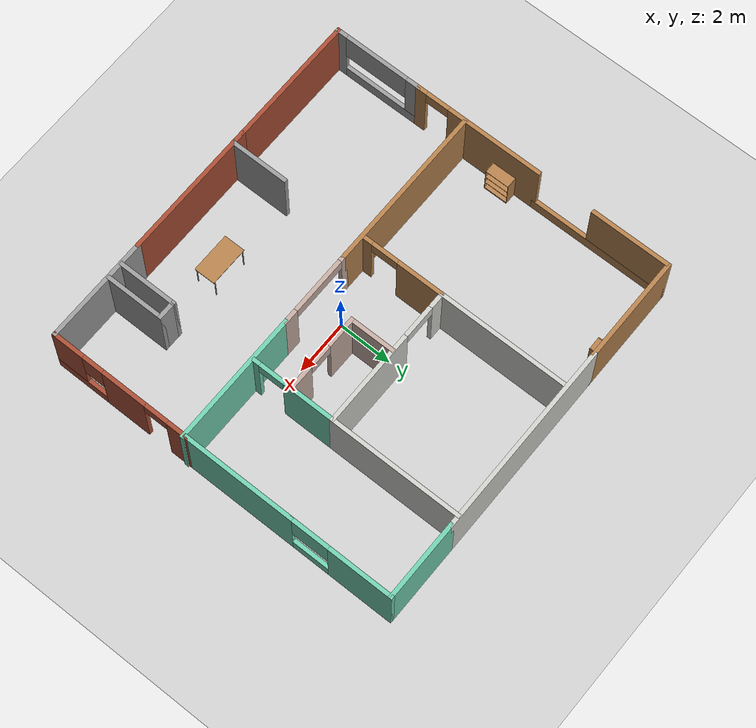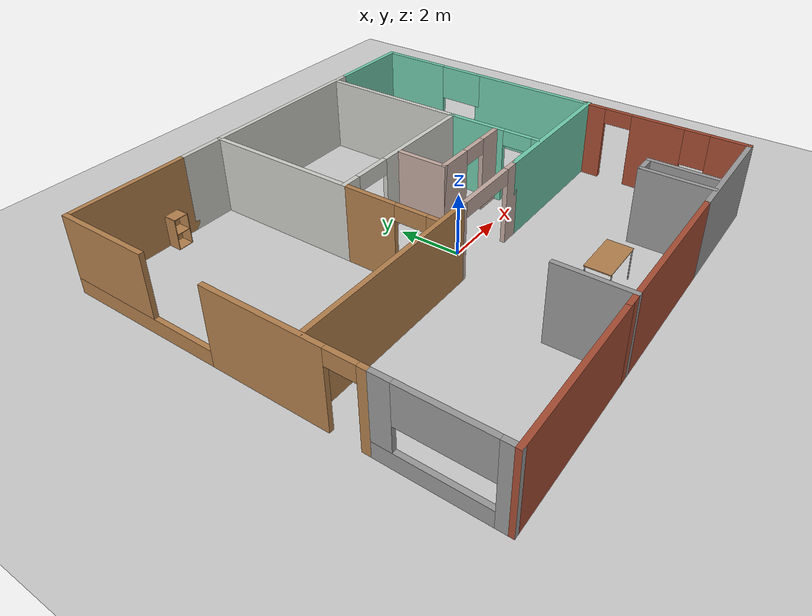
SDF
<sdf version="1.6">
 <world name="default">
  <model name="ground_plane">
   <static>1</static>
   <link name="link">
    <collision name="collision">
     <geometry><plane><normal>0 0 1</normal><size>100 100</size></plane></geometry>
     <surface>
      <contact><collide_bitmask>65535</collide_bitmask></contact>
      <friction><ode><mu>100</mu><mu2>50</mu2></ode></friction>
     </surface>
    </collision>
    <visual name="visual">
     <cast_shadows>0</cast_shadows>
     <geometry><plane><normal>0 0 1</normal><size>100 100</size></plane></geometry>
     <material>
      <script><uri>file://media/materials/scripts/gazebo.material</uri><name>Gazebo/Grey</name></script>
     </material>
    </visual>
   </link>
  </model>
  <model name="apartment2">
   <pose>-0.311146 0.646432 0 0 -0 0</pose>
   <link name="Wall_10">
    <pose>-6.92355 4.1 0 0 -0 1.5708</pose>
    <visual name="Wall_10_Visual_0">
     <pose>0 0 0.25 0 -0 0</pose>
     <geometry><box><size>5.25 0.15 0.5</size></box></geometry>
     <material>
      <script><uri>file://media/materials/scripts/gazebo.material</uri><name>Gazebo/Wood</name></script>
      <ambient>1 1 1 1</ambient>
     </material>
     <meta><layer>0</layer></meta>
    </visual>
    <collision name="Wall_10_Collision_0">
     <geometry><box><size>5.25 0.15 0.5</size></box></geometry>
     <pose>0 0 0.25 0 -0 0</pose>
    </collision>
    <visual name="Wall_10_Visual_1">
     <pose>1.10087 0 1.5 0 -0 0</pose>
     <geometry><box><size>3.04826 0.15 2</size></box></geometry>
     <material>
      <script><uri>file://media/materials/scripts/gazebo.material</uri><name>Gazebo/Wood</name></script>
      <ambient>1 1 1 1</ambient>
     </material>
     <meta><layer>0</layer></meta>
    </visual>
    <collision name="Wall_10_Collision_1">
     <geometry><box><size>3.04826 0.15 2</size></box></geometry>
     <pose>1.10087 0 1.5 0 -0 0</pose>
    </collision>
   </link>
   <link name="Wall_11">
    <collision name="Wall_11_Collision">
     <geometry><box><size>4 0.15 2.5</size></box></geometry>
     <pose>0 0 1.25 0 -0 0</pose>
    </collision>
    <visual name="Wall_11_Visual">
     <pose>0 0 1.25 0 -0 0</pose>
     <geometry><box><size>4 0.15 2.5</size></box></geometry>
     <material>
      <script><uri>file://media/materials/scripts/gazebo.material</uri><name>Gazebo/Wood</name></script>
      <ambient>1 1 1 1</ambient>
     </material>
     <meta><layer>0</layer></meta>
    </visual>
    <pose>-4.99855 6.65 0 0 -0 0</pose>
   </link>
   <link name="Wall_12">
    <collision name="Wall_12_Collision">
     <geometry><box><size>7.25 0.15 2.5</size></box></geometry>
     <pose>0 0 1.25 0 -0 0</pose>
    </collision>
    <visual name="Wall_12_Visual">
     <pose>0 0 1.25 0 -0 0</pose>
     <geometry><box><size>7.25 0.15 2.5</size></box></geometry>
     <material>
      <script><uri>file://media/materials/scripts/gazebo.material</uri><name>Gazebo/CeilingTiled</name></script>
      <ambient>1 1 1 1</ambient>
     </material>
     <meta><layer>0</layer></meta>
    </visual>
    <pose>0.476446 6.65 0 0 -0 0</pose>
   </link>
   <link name="Wall_13">
    <collision name="Wall_13_Collision">
     <geometry><box><size>3 0.15 2.5</size></box></geometry>
     <pose>0 0 1.25 0 -0 0</pose>
    </collision>
    <visual name="Wall_13_Visual">
     <pose>0 0 1.25 0 -0 0</pose>
     <geometry><box><size>3 0.15 2.5</size></box></geometry>
     <material>
      <script><uri>file://media/materials/scripts/gazebo.material</uri><name>Gazebo/Grey</name></script>
      <ambient>0.435294 0.796078 0.67451 1</ambient>
     </material>
     <meta><layer>0</layer></meta>
    </visual>
    <pose>5.45145 6.65 0 0 -0 0</pose>
   </link>
   <link name="Wall_14">
    <pose>6.87645 4.725 0 0 -0 -1.5708</pose>
    <visual name="Wall_14_Visual_0">
     <pose>-0.771214 0 1.25 0 -0 0</pose>
     <geometry><box><size>2.45757 0.15 2.5</size></box></geometry>
     <material>
      <script><uri>file://media/materials/scripts/gazebo.material</uri><name>Gazebo/Grey</name></script>
      <ambient>0.435294 0.796078 0.67451 1</ambient>
     </material>
     <meta><layer>0</layer></meta>
    </visual>
    <collision name="Wall_14_Collision_0">
     <geometry><box><size>2.45757 0.15 2.5</size></box></geometry>
     <pose>-0.771214 0 1.25 0 -0 0</pose>
    </collision>
    <visual name="Wall_14_Visual_1">
     <pose>1.22879 0 0.25 0 -0 0</pose>
     <geometry><box><size>1.54243 0.15 0.5</size></box></geometry>
     <material>
      <script><uri>file://media/materials/scripts/gazebo.material</uri><name>Gazebo/Grey</name></script>
      <ambient>0.435294 0.796078 0.67451 1</ambient>
     </material>
     <meta><layer>0</layer></meta>
    </visual>
    <collision name="Wall_14_Collision_1">
     <geometry><box><size>1.54243 0.15 0.5</size></box></geometry>
     <pose>1.22879 0 0.25 0 -0 0</pose>
    </collision>
    <visual name="Wall_14_Visual_2">
     <pose>1.22879 0 1.9 0 -0 0</pose>
     <geometry><box><size>1.54243 0.15 1.2</size></box></geometry>
     <material>
      <script><uri>file://media/materials/scripts/gazebo.material</uri><name>Gazebo/Grey</name></script>
      <ambient>0.435294 0.796078 0.67451 1</ambient>
     </material>
     <meta><layer>0</layer></meta>
    </visual>
    <collision name="Wall_14_Collision_2">
     <geometry><box><size>1.54243 0.15 1.2</size></box></geometry>
     <pose>1.22879 0 1.9 0 -0 0</pose>
    </collision>
   </link>
   <link name="Wall_15">
    <collision name="Wall_15_Collision">
     <geometry><box><size>4.25 0.15 2.5</size></box></geometry>
     <pose>0 0 1.25 0 -0 0</pose>
    </collision>
    <visual name="Wall_15_Visual">
     <pose>0 0 1.25 0 -0 0</pose>
     <geometry><box><size>4.25 0.15 2.5</size></box></geometry>
     <material>
      <script><uri>file://media/materials/scripts/gazebo.material</uri><name>Gazebo/Grey</name></script>
      <ambient>0.435294 0.796078 0.67451 1</ambient>
     </material>
     <meta><layer>0</layer></meta>
    </visual>
    <pose>6.87645 0.75 0 0 -0 -1.5708</pose>
   </link>
   <link name="Wall_17">
    <pose>6.87645 -3.975 0 0 -0 -1.5708</pose>
    <visual name="Wall_17_Visual_0">
     <pose>-2.33269 0 1.25 0 -0 0</pose>
     <geometry><box><size>0.834621 0.15 2.5</size></box></geometry>
     <material>
      <script><uri>file://media/materials/scripts/gazebo.material</uri><name>Gazebo/Bricks</name></script>
      <ambient>1 1 1 1</ambient>
     </material>
     <meta><layer>0</layer></meta>
    </visual>
    <collision name="Wall_17_Collision_0">
     <geometry><box><size>0.834621 0.15 2.5</size></box></geometry>
     <pose>-2.33269 0 1.25 0 -0 0</pose>
    </collision>
    <visual name="Wall_17_Visual_1">
     <pose>-0.15663 0 1.25 0 -0 0</pose>
     <geometry><box><size>1.7175 0.15 2.5</size></box></geometry>
     <material>
      <script><uri>file://media/materials/scripts/gazebo.material</uri><name>Gazebo/Bricks</name></script>
      <ambient>1 1 1 1</ambient>
     </material>
     <meta><layer>0</layer></meta>
    </visual>
    <collision name="Wall_17_Collision_1">
     <geometry><box><size>1.7175 0.15 2.5</size></box></geometry>
     <pose>-0.15663 0 1.25 0 -0 0</pose>
    </collision>
    <visual name="Wall_17_Visual_2">
     <pose>1.72606 0 0.25 0 -0 0</pose>
     <geometry><box><size>2.04788 0.15 0.5</size></box></geometry>
     <material>
      <script><uri>file://media/materials/scripts/gazebo.material</uri><name>Gazebo/Bricks</name></script>
      <ambient>1 1 1 1</ambient>
     </material>
     <meta><layer>0</layer></meta>
    </visual>
    <collision name="Wall_17_Collision_2">
     <geometry><box><size>2.04788 0.15 0.5</size></box></geometry>
     <pose>1.72606 0 0.25 0 -0 0</pose>
    </collision>
    <visual name="Wall_17_Visual_3">
     <pose>2.12606 0 1.5 0 -0 0</pose>
     <geometry><box><size>1.24788 0.15 2</size></box></geometry>
     <material>
      <script><uri>file://media/materials/scripts/gazebo.material</uri><name>Gazebo/Bricks</name></script>
      <ambient>1 1 1 1</ambient>
     </material>
     <meta><layer>0</layer></meta>
    </visual>
    <collision name="Wall_17_Collision_3">
     <geometry><box><size>1.24788 0.15 2</size></box></geometry>
     <pose>2.12606 0 1.5 0 -0 0</pose>
    </collision>
    <visual name="Wall_17_Visual_4">
     <pose>1.10212 0 1.9 0 -0 0</pose>
     <geometry><box><size>0.8 0.15 1.2</size></box></geometry>
     <material>
      <script><uri>file://media/materials/scripts/gazebo.material</uri><name>Gazebo/Bricks</name></script>
      <ambient>1 1 1 1</ambient>
     </material>
     <meta><layer>0</layer></meta>
    </visual>
    <collision name="Wall_17_Collision_4">
     <geometry><box><size>0.8 0.15 1.2</size></box></geometry>
     <pose>1.10212 0 1.9 0 -0 0</pose>
    </collision>
    <visual name="Wall_17_Visual_5">
     <pose>-1.46538 0 2.25 0 -0 0</pose>
     <geometry><box><size>0.9 0.15 0.5</size></box></geometry>
     <material>
      <script><uri>file://media/materials/scripts/gazebo.material</uri><name>Gazebo/Bricks</name></script>
      <ambient>1 1 1 1</ambient>
     </material>
     <meta><layer>0</layer></meta>
    </visual>
    <collision name="Wall_17_Collision_5">
     <geometry><box><size>0.9 0.15 0.5</size></box></geometry>
     <pose>-1.46538 0 2.25 0 -0 0</pose>
    </collision>
   </link>
   <link name="Wall_19">
    <collision name="Wall_19_Collision">
     <geometry><box><size>6.25 0.15 2.5</size></box></geometry>
     <pose>0 0 1.25 0 -0 0</pose>
    </collision>
    <visual name="Wall_19_Visual">
     <pose>0 0 1.25 0 -0 0</pose>
     <geometry><box><size>6.25 0.15 2.5</size></box></geometry>
     <material>
      <script><uri>file://media/materials/scripts/gazebo.material</uri><name>Gazebo/Wood</name></script>
      <ambient>1 1 1 1</ambient>
     </material>
     <meta><layer>0</layer></meta>
    </visual>
    <pose>-3.82645 -1.39935 0 0 -0 0</pose>
   </link>
   <link name="Wall_20">
    <pose>0.648555 -1.39935 0 0 -0 0</pose>
    <visual name="Wall_20_Visual_0">
     <pose>-1.36392 0 1.25 0 -0 0</pose>
     <geometry><box><size>0.272168 0.15 2.5</size></box></geometry>
     <material>
      <script><uri>file://media/materials/scripts/gazebo.material</uri><name>Gazebo/Grey</name></script>
      <ambient>0.760784 0.662745 0.627451 1</ambient>
     </material>
     <meta><layer>0</layer></meta>
    </visual>
    <collision name="Wall_20_Collision_0">
     <geometry><box><size>0.272168 0.15 2.5</size></box></geometry>
     <pose>-1.36392 0 1.25 0 -0 0</pose>
    </collision>
    <visual name="Wall_20_Visual_1">
     <pose>1.21314 0 1.25 0 -0 0</pose>
     <geometry><box><size>0.57373 0.15 2.5</size></box></geometry>
     <material>
      <script><uri>file://media/materials/scripts/gazebo.material</uri><name>Gazebo/Grey</name></script>
      <ambient>0.760784 0.662745 0.627451 1</ambient>
     </material>
     <meta><layer>0</layer></meta>
    </visual>
    <collision name="Wall_20_Collision_1">
     <geometry><box><size>0.57373 0.15 2.5</size></box></geometry>
     <pose>1.21314 0 1.25 0 -0 0</pose>
    </collision>
    <visual name="Wall_20_Visual_2">
     <pose>-0.150781 0 2.25 0 -0 0</pose>
     <geometry><box><size>2.1541 0.15 0.5</size></box></geometry>
     <material>
      <script><uri>file://media/materials/scripts/gazebo.material</uri><name>Gazebo/Grey</name></script>
      <ambient>0.760784 0.662745 0.627451 1</ambient>
     </material>
     <meta><layer>0</layer></meta>
    </visual>
    <collision name="Wall_20_Collision_2">
     <geometry><box><size>2.1541 0.15 0.5</size></box></geometry>
     <pose>-0.150781 0 2.25 0 -0 0</pose>
    </collision>
   </link>
   <link name="Wall_21">
    <collision name="Wall_21_Collision">
     <geometry><box><size>5 0.15 2.5</size></box></geometry>
     <pose>0 0 1.25 0 -0 0</pose>
    </collision>
    <visual name="Wall_21_Visual">
     <pose>0 0 1.25 0 -0 0</pose>
     <geometry><box><size>5 0.15 2.5</size></box></geometry>
     <material>
      <script><uri>file://media/materials/scripts/gazebo.material</uri><name>Gazebo/Grey</name></script>
      <ambient>0.435294 0.796078 0.67451 1</ambient>
     </material>
     <meta><layer>0</layer></meta>
    </visual>
    <pose>4.49855 -1.39935 0 0 -0 0</pose>
   </link>
   <link name="Wall_23">
    <collision name="Wall_23_Collision">
     <geometry><box><size>5 0.15 2.5</size></box></geometry>
     <pose>0 0 1.25 0 -0 0</pose>
    </collision>
    <visual name="Wall_23_Visual">
     <pose>0 0 1.25 0 -0 0</pose>
     <geometry><box><size>5 0.15 2.5</size></box></geometry>
     <material>
      <script><uri>file://media/materials/scripts/gazebo.material</uri><name>Gazebo/CeilingTiled</name></script>
      <ambient>1 1 1 1</ambient>
     </material>
     <meta><layer>0</layer></meta>
    </visual>
    <pose>-1.69519 4.20197 0 0 -0 -1.5708</pose>
   </link>
   <link name="Wall_24">
    <pose>0.979811 1.77697 0 0 -0 0</pose>
    <visual name="Wall_24_Visual_0">
     <pose>-2.42863 0 1.25 0 -0 0</pose>
     <geometry><box><size>0.642747 0.15 2.5</size></box></geometry>
     <material>
      <script><uri>file://media/materials/scripts/gazebo.material</uri><name>Gazebo/CeilingTiled</name></script>
      <ambient>0.760784 0.662745 0.627451 1</ambient>
     </material>
     <meta><layer>0</layer></meta>
    </visual>
    <collision name="Wall_24_Collision_0">
     <geometry><box><size>0.642747 0.15 2.5</size></box></geometry>
     <pose>-2.42863 0 1.25 0 -0 0</pose>
    </collision>
    <visual name="Wall_24_Visual_1">
     <pose>0.933288 0 1.25 0 -0 0</pose>
     <geometry><box><size>3.63342 0.15 2.5</size></box></geometry>
     <material>
      <script><uri>file://media/materials/scripts/gazebo.material</uri><name>Gazebo/CeilingTiled</name></script>
      <ambient>0.760784 0.662745 0.627451 1</ambient>
     </material>
     <meta><layer>0</layer></meta>
    </visual>
    <collision name="Wall_24_Collision_1">
     <geometry><box><size>3.63342 0.15 2.5</size></box></geometry>
     <pose>0.933288 0 1.25 0 -0 0</pose>
    </collision>
    <visual name="Wall_24_Visual_2">
     <pose>-1.49534 0 2.25 0 -0 0</pose>
     <geometry><box><size>1.22383 0.15 0.5</size></box></geometry>
     <material>
      <script><uri>file://media/materials/scripts/gazebo.material</uri><name>Gazebo/CeilingTiled</name></script>
      <ambient>0.760784 0.662745 0.627451 1</ambient>
     </material>
     <meta><layer>0</layer></meta>
    </visual>
    <collision name="Wall_24_Collision_2">
     <geometry><box><size>1.22383 0.15 0.5</size></box></geometry>
     <pose>-1.49534 0 2.25 0 -0 0</pose>
    </collision>
   </link>
   <link name="Wall_25">
    <collision name="Wall_25_Collision">
     <geometry><box><size>5 0.15 2.5</size></box></geometry>
     <pose>0 0 1.25 0 -0 0</pose>
    </collision>
    <visual name="Wall_25_Visual">
     <pose>0 0 1.25 0 -0 0</pose>
     <geometry><box><size>5 0.15 2.5</size></box></geometry>
     <material>
      <script><uri>file://media/materials/scripts/gazebo.material</uri><name>Gazebo/CeilingTiled</name></script>
      <ambient>1 1 1 1</ambient>
     </material>
     <meta><layer>0</layer></meta>
    </visual>
    <pose>3.65481 4.20197 0 0 -0 1.5708</pose>
   </link>
   <link name="Wall_27">
    <pose>3.65481 0.226969 0 0 -0 -1.5708</pose>
    <visual name="Wall_27_Visual_0">
     <pose>-0.634908 0 1.25 0 -0 0</pose>
     <geometry><box><size>1.98018 0.15 2.5</size></box></geometry>
     <material>
      <script><uri>file://media/materials/scripts/gazebo.material</uri><name>Gazebo/Grey</name></script>
      <ambient>0.435294 0.796078 0.67451 1</ambient>
     </material>
     <meta><layer>0</layer></meta>
    </visual>
    <collision name="Wall_27_Collision_0">
     <geometry><box><size>1.98018 0.15 2.5</size></box></geometry>
     <pose>-0.634908 0 1.25 0 -0 0</pose>
    </collision>
    <visual name="Wall_27_Visual_1">
     <pose>1.47479 0 1.25 0 -0 0</pose>
     <geometry><box><size>0.300424 0.15 2.5</size></box></geometry>
     <material>
      <script><uri>file://media/materials/scripts/gazebo.material</uri><name>Gazebo/Grey</name></script>
      <ambient>0.435294 0.796078 0.67451 1</ambient>
     </material>
     <meta><layer>0</layer></meta>
    </visual>
    <collision name="Wall_27_Collision_1">
     <geometry><box><size>0.300424 0.15 2.5</size></box></geometry>
     <pose>1.47479 0 1.25 0 -0 0</pose>
    </collision>
    <visual name="Wall_27_Visual_2">
     <pose>0.83988 0 2.25 0 -0 0</pose>
     <geometry><box><size>0.969392 0.15 0.5</size></box></geometry>
     <material>
      <script><uri>file://media/materials/scripts/gazebo.material</uri><name>Gazebo/Grey</name></script>
      <ambient>0.435294 0.796078 0.67451 1</ambient>
     </material>
     <meta><layer>0</layer></meta>
    </visual>
    <collision name="Wall_27_Collision_2">
     <geometry><box><size>0.969392 0.15 0.5</size></box></geometry>
     <pose>0.83988 0 2.25 0 -0 0</pose>
    </collision>
   </link>
   <link name="Wall_29">
    <pose>-1.69519 0.226969 0 0 -0 -1.5708</pose>
    <visual name="Wall_29_Visual_0">
     <pose>-0.715865 0 1.25 0 -0 0</pose>
     <geometry><box><size>1.81827 0.15 2.5</size></box></geometry>
     <material>
      <script><uri>file://media/materials/scripts/gazebo.material</uri><name>Gazebo/Wood</name></script>
      <ambient>1 1 1 1</ambient>
     </material>
     <meta><layer>0</layer></meta>
    </visual>
    <collision name="Wall_29_Collision_0">
     <geometry><box><size>1.81827 0.15 2.5</size></box></geometry>
     <pose>-0.715865 0 1.25 0 -0 0</pose>
    </collision>
    <visual name="Wall_29_Visual_1">
     <pose>1.41696 0 1.25 0 -0 0</pose>
     <geometry><box><size>0.416077 0.15 2.5</size></box></geometry>
     <material>
      <script><uri>file://media/materials/scripts/gazebo.material</uri><name>Gazebo/Wood</name></script>
      <ambient>1 1 1 1</ambient>
     </material>
     <meta><layer>0</layer></meta>
    </visual>
    <collision name="Wall_29_Collision_1">
     <geometry><box><size>0.416077 0.15 2.5</size></box></geometry>
     <pose>1.41696 0 1.25 0 -0 0</pose>
    </collision>
    <visual name="Wall_29_Visual_2">
     <pose>0.701097 0 2.25 0 -0 0</pose>
     <geometry><box><size>1.01565 0.15 0.5</size></box></geometry>
     <material>
      <script><uri>file://media/materials/scripts/gazebo.material</uri><name>Gazebo/Wood</name></script>
      <ambient>1 1 1 1</ambient>
     </material>
     <meta><layer>0</layer></meta>
    </visual>
    <collision name="Wall_29_Collision_2">
     <geometry><box><size>1.01565 0.15 0.5</size></box></geometry>
     <pose>0.701097 0 2.25 0 -0 0</pose>
    </collision>
   </link>
   <link name="Wall_31">
    <collision name="Wall_31_Collision">
     <geometry><box><size>1.75 0.15 2.5</size></box></geometry>
     <pose>0 0 1.25 0 -0 0</pose>
    </collision>
    <visual name="Wall_31_Visual">
     <pose>0 0 1.25 0 -0 0</pose>
     <geometry><box><size>1.75 0.15 2.5</size></box></geometry>
     <material>
      <script><uri>file://media/materials/scripts/gazebo.material</uri><name>Gazebo/Grey</name></script>
      <ambient>0.760784 0.662745 0.627451 1</ambient>
     </material>
     <meta><layer>0</layer></meta>
    </visual>
    <pose>0.733525 0.946411 0 0 -0 -1.5708</pose>
   </link>
   <link name="Wall_32">
    <pose>2.15853 0.146411 0 0 -0 0</pose>
    <visual name="Wall_32_Visual_0">
     <pose>-0.901059 0 1.25 0 -0 0</pose>
     <geometry><box><size>1.19788 0.15 2.5</size></box></geometry>
     <material>
      <script><uri>file://media/materials/scripts/gazebo.material</uri><name>Gazebo/Grey</name></script>
      <ambient>0.760784 0.662745 0.627451 1</ambient>
     </material>
     <meta><layer>0</layer></meta>
    </visual>
    <collision name="Wall_32_Collision_0">
     <geometry><box><size>1.19788 0.15 2.5</size></box></geometry>
     <pose>-0.901059 0 1.25 0 -0 0</pose>
    </collision>
    <visual name="Wall_32_Visual_1">
     <pose>1.04894 0 1.25 0 -0 0</pose>
     <geometry><box><size>0.902119 0.15 2.5</size></box></geometry>
     <material>
      <script><uri>file://media/materials/scripts/gazebo.material</uri><name>Gazebo/Grey</name></script>
      <ambient>0.760784 0.662745 0.627451 1</ambient>
     </material>
     <meta><layer>0</layer></meta>
    </visual>
    <collision name="Wall_32_Collision_1">
     <geometry><box><size>0.902119 0.15 2.5</size></box></geometry>
     <pose>1.04894 0 1.25 0 -0 0</pose>
    </collision>
    <visual name="Wall_32_Visual_2">
     <pose>0.147881 0 2.25 0 -0 0</pose>
     <geometry><box><size>0.9 0.15 0.5</size></box></geometry>
     <material>
      <script><uri>file://media/materials/scripts/gazebo.material</uri><name>Gazebo/Grey</name></script>
      <ambient>0.760784 0.662745 0.627451 1</ambient>
     </material>
     <meta><layer>0</layer></meta>
    </visual>
    <collision name="Wall_32_Collision_2">
     <geometry><box><size>0.9 0.15 0.5</size></box></geometry>
     <pose>0.147881 0 2.25 0 -0 0</pose>
    </collision>
   </link>
   <link name="Wall_34">
    <collision name="Wall_34_Collision">
     <geometry><box><size>2.25 0.15 2.5</size></box></geometry>
     <pose>0 0 1.25 0 -0 0</pose>
    </collision>
    <visual name="Wall_34_Visual">
     <pose>0 0 1.25 0 -0 0</pose>
     <geometry><box><size>2.25 0.15 2.5</size></box></geometry>
     <material>
      <script><uri>file://media/materials/scripts/gazebo.material</uri><name>Gazebo/Grey</name></script>
      <ambient>1 1 1 1</ambient>
     </material>
     <meta><layer>0</layer></meta>
    </visual>
    <pose>-1.64893 -5.6 0 0 -0 1.5708</pose>
   </link>
   <link name="Wall_36">
    <collision name="Wall_36_Collision">
     <geometry><box><size>2.25 0.15 2.5</size></box></geometry>
     <pose>0 0 1.25 0 -0 0</pose>
    </collision>
    <visual name="Wall_36_Visual">
     <pose>0 0 1.25 0 -0 0</pose>
     <geometry><box><size>2.25 0.15 2.5</size></box></geometry>
     <material>
      <script><uri>file://media/materials/scripts/gazebo.material</uri><name>Gazebo/Grey</name></script>
      <ambient>1 1 1 1</ambient>
     </material>
     <meta><layer>0</layer></meta>
    </visual>
    <pose>3.78676 -5.55374 0 0 -0 1.5708</pose>
   </link>
   <link name="Wall_37">
    <collision name="Wall_37_Collision">
     <geometry><box><size>0.75 0.15 2.5</size></box></geometry>
     <pose>0 0 1.25 0 -0 0</pose>
    </collision>
    <visual name="Wall_37_Visual">
     <pose>0 0 1.25 0 -0 0</pose>
     <geometry><box><size>0.75 0.15 2.5</size></box></geometry>
     <material>
      <script><uri>file://media/materials/scripts/gazebo.material</uri><name>Gazebo/Grey</name></script>
      <ambient>1 1 1 1</ambient>
     </material>
     <meta><layer>0</layer></meta>
    </visual>
    <pose>4.08676 -4.50374 0 0 -0 0</pose>
   </link>
   <link name="Wall_38">
    <collision name="Wall_38_Collision">
     <geometry><box><size>2.25 0.15 2.5</size></box></geometry>
     <pose>0 0 1.25 0 -0 0</pose>
    </collision>
    <visual name="Wall_38_Visual">
     <pose>0 0 1.25 0 -0 0</pose>
     <geometry><box><size>2.25 0.15 2.5</size></box></geometry>
     <material>
      <script><uri>file://media/materials/scripts/gazebo.material</uri><name>Gazebo/Grey</name></script>
      <ambient>1 1 1 1</ambient>
     </material>
     <meta><layer>0</layer></meta>
    </visual>
    <pose>4.38676 -5.55374 0 0 -0 -1.5708</pose>
   </link>
   <link name="Wall_4">
    <collision name="Wall_4_Collision">
     <geometry><box><size>4 0.15 2.5</size></box></geometry>
     <pose>0 0 1.25 0 -0 0</pose>
    </collision>
    <visual name="Wall_4_Visual">
     <pose>0 0 1.25 0 -0 0</pose>
     <geometry><box><size>4 0.15 2.5</size></box></geometry>
     <material>
      <script><uri>file://media/materials/scripts/gazebo.material</uri><name>Gazebo/Grey</name></script>
      <ambient>1 1 1 1</ambient>
     </material>
     <meta><layer>0</layer></meta>
    </visual>
    <pose>4.92831 -6.65 0 0 -0 3.14159</pose>
   </link>
   <link name="Wall_5">
    <collision name="Wall_5_Collision">
     <geometry><box><size>5.20374 0.15 2.5</size></box></geometry>
     <pose>0 0 1.25 0 -0 0</pose>
    </collision>
    <visual name="Wall_5_Visual">
     <pose>0 0 1.25 0 -0 0</pose>
     <geometry><box><size>5.20374 0.15 2.5</size></box></geometry>
     <material>
      <script><uri>file://media/materials/scripts/gazebo.material</uri><name>Gazebo/Bricks</name></script>
      <ambient>1 1 1 1</ambient>
     </material>
     <meta><layer>0</layer></meta>
    </visual>
    <pose>0.453315 -6.65 0 0 -0 3.14159</pose>
   </link>
   <link name="Wall_6">
    <collision name="Wall_6_Collision">
     <geometry><box><size>5 0.15 2.5</size></box></geometry>
     <pose>0 0 1.25 0 -0 0</pose>
    </collision>
    <visual name="Wall_6_Visual">
     <pose>0 0 1.25 0 -0 0</pose>
     <geometry><box><size>5 0.15 2.5</size></box></geometry>
     <material>
      <script><uri>file://media/materials/scripts/gazebo.material</uri><name>Gazebo/Bricks</name></script>
      <ambient>1 1 1 1</ambient>
     </material>
     <meta><layer>0</layer></meta>
    </visual>
    <pose>-4.49855 -6.65 0 0 -0 3.14159</pose>
   </link>
   <link name="Wall_7">
    <pose>-6.92355 -4.975 0 0 -0 1.5708</pose>
    <visual name="Wall_7_Visual_0">
     <pose>-1.51928 0 1.25 0 -0 0</pose>
     <geometry><box><size>0.46144 0.15 2.5</size></box></geometry>
     <material>
      <script><uri>file://media/materials/scripts/gazebo.material</uri><name>Gazebo/Grey</name></script>
      <ambient>1 1 1 1</ambient>
     </material>
     <meta><layer>0</layer></meta>
    </visual>
    <collision name="Wall_7_Collision_0">
     <geometry><box><size>0.46144 0.15 2.5</size></box></geometry>
     <pose>-1.51928 0 1.25 0 -0 0</pose>
    </collision>
    <visual name="Wall_7_Visual_1">
     <pose>0.23072 0 0.25 0 -0 0</pose>
     <geometry><box><size>3.03856 0.15 0.5</size></box></geometry>
     <material>
      <script><uri>file://media/materials/scripts/gazebo.material</uri><name>Gazebo/Grey</name></script>
      <ambient>1 1 1 1</ambient>
     </material>
     <meta><layer>0</layer></meta>
    </visual>
    <collision name="Wall_7_Collision_1">
     <geometry><box><size>3.03856 0.15 0.5</size></box></geometry>
     <pose>0.23072 0 0.25 0 -0 0</pose>
    </collision>
    <visual name="Wall_7_Visual_2">
     <pose>1.46342 0 1.5 0 -0 0</pose>
     <geometry><box><size>0.573156 0.15 2</size></box></geometry>
     <material>
      <script><uri>file://media/materials/scripts/gazebo.material</uri><name>Gazebo/Grey</name></script>
      <ambient>1 1 1 1</ambient>
     </material>
     <meta><layer>0</layer></meta>
    </visual>
    <collision name="Wall_7_Collision_2">
     <geometry><box><size>0.573156 0.15 2</size></box></geometry>
     <pose>1.46342 0 1.5 0 -0 0</pose>
    </collision>
    <visual name="Wall_7_Visual_3">
     <pose>-0.055858 0 1.9 0 -0 0</pose>
     <geometry><box><size>2.4654 0.15 1.2</size></box></geometry>
     <material>
      <script><uri>file://media/materials/scripts/gazebo.material</uri><name>Gazebo/Grey</name></script>
      <ambient>1 1 1 1</ambient>
     </material>
     <meta><layer>0</layer></meta>
    </visual>
    <collision name="Wall_7_Collision_3">
     <geometry><box><size>2.4654 0.15 1.2</size></box></geometry>
     <pose>-0.055858 0 1.9 0 -0 0</pose>
    </collision>
   </link>
   <link name="Wall_8">
    <pose>-6.92355 -0.875 0 0 -0 1.5708</pose>
    <visual name="Wall_8_Visual_0">
     <pose>-2.29231 0 1.25 0 -0 0</pose>
     <geometry><box><size>0.415379 0.15 2.5</size></box></geometry>
     <material>
      <script><uri>file://media/materials/scripts/gazebo.material</uri><name>Gazebo/Wood</name></script>
      <ambient>1 1 1 1</ambient>
     </material>
     <meta><layer>0</layer></meta>
    </visual>
    <collision name="Wall_8_Collision_0">
     <geometry><box><size>0.415379 0.15 2.5</size></box></geometry>
     <pose>-2.29231 0 1.25 0 -0 0</pose>
    </collision>
    <visual name="Wall_8_Visual_1">
     <pose>0.657689 0 1.25 0 -0 0</pose>
     <geometry><box><size>3.68462 0.15 2.5</size></box></geometry>
     <material>
      <script><uri>file://media/materials/scripts/gazebo.material</uri><name>Gazebo/Wood</name></script>
      <ambient>1 1 1 1</ambient>
     </material>
     <meta><layer>0</layer></meta>
    </visual>
    <collision name="Wall_8_Collision_1">
     <geometry><box><size>3.68462 0.15 2.5</size></box></geometry>
     <pose>0.657689 0 1.25 0 -0 0</pose>
    </collision>
    <visual name="Wall_8_Visual_2">
     <pose>-1.63462 0 2.25 0 -0 0</pose>
     <geometry><box><size>0.9 0.15 0.5</size></box></geometry>
     <material>
      <script><uri>file://media/materials/scripts/gazebo.material</uri><name>Gazebo/Wood</name></script>
      <ambient>1 1 1 1</ambient>
     </material>
     <meta><layer>0</layer></meta>
    </visual>
    <collision name="Wall_8_Collision_2">
     <geometry><box><size>0.9 0.15 0.5</size></box></geometry>
     <pose>-1.63462 0 2.25 0 -0 0</pose>
    </collision>
   </link>
   <static>1</static>
  </model>
  <model name="cabinet">
   <static>1</static>
   <link name="cabinet_bottom_plate">
    <inertial>
     <pose>0 0 -1 0 -0 0</pose>
     <inertia><ixx>2.05</ixx><ixy>0</ixy><ixz>0</ixz><iyy>2.05</iyy><iyz>0</iyz><izz>2.05</izz></inertia>
     <mass>25</mass>
    </inertial>
    <collision name="cabinet_bottom_plate_geom">
     <pose>0 0 0.01 0 -0 0</pose>
     <geometry><box><size>0.45 0.45 0.02</size></box></geometry>
    </collision>
    <visual name="cabinet_bottom_plate_geom_visual">
     <pose>0 0 0.01 0 -0 0</pose>
     <geometry><box><size>0.45 0.45 0.02</size></box></geometry>
     <material>
      <script><uri>file://media/materials/scripts/gazebo.material</uri><name>Gazebo/Wood</name></script>
     </material>
    </visual>
    <collision name="cabinet_bottom_plate_geom_cabinet_back_plate">
     <pose>0.235 0 0.51 0 -0 0</pose>
     <geometry><box><size>0.02 0.45 1.02</size></box></geometry>
    </collision>
    <visual name="cabinet_bottom_plate_geom_cabinet_back_plate_visual">
     <pose>0.235 0 0.51 0 -0 0</pose>
     <geometry><box><size>0.02 0.45 1.02</size></box></geometry>
     <material>
      <script><uri>file://media/materials/scripts/gazebo.material</uri><name>Gazebo/Wood</name></script>
     </material>
    </visual>
    <collision name="cabinet_bottom_plate_geom_cabinet_left_plate">
     <pose>0 0.235 0.51 0 -0 0</pose>
     <geometry><box><size>0.45 0.02 1.02</size></box></geometry>
    </collision>
    <visual name="cabinet_bottom_plate_geom_cabinet_left_plate_visual">
     <pose>0 0.235 0.51 0 -0 0</pose>
     <geometry><box><size>0.45 0.02 1.02</size></box></geometry>
     <material>
      <script><uri>file://media/materials/scripts/gazebo.material</uri><name>Gazebo/Wood</name></script>
     </material>
    </visual>
    <collision name="cabinet_bottom_plate_geom_cabinet_middle_plate">
     <pose>0 0 0.51 0 -0 0</pose>
     <geometry><box><size>0.45 0.45 0.02</size></box></geometry>
    </collision>
    <visual name="cabinet_bottom_plate_geom_cabinet_middle_plate_visual">
     <pose>0 0 0.51 0 -0 0</pose>
     <geometry><box><size>0.45 0.45 0.02</size></box></geometry>
     <material>
      <script><uri>file://media/materials/scripts/gazebo.material</uri><name>Gazebo/Wood</name></script>
     </material>
    </visual>
    <collision name="cabinet_bottom_plate_geom_cabinet_right_plate">
     <pose>0 -0.235 0.51 0 -0 0</pose>
     <geometry><box><size>0.45 0.02 1.02</size></box></geometry>
    </collision>
    <visual name="cabinet_bottom_plate_geom_cabinet_right_plate_visual">
     <pose>0 -0.235 0.51 0 -0 0</pose>
     <geometry><box><size>0.45 0.02 1.02</size></box></geometry>
     <material>
      <script><uri>file://media/materials/scripts/gazebo.material</uri><name>Gazebo/Wood</name></script>
     </material>
    </visual>
    <collision name="cabinet_bottom_plate_geom_cabinet_top_plate">
     <pose>0 0 1.01 0 -0 0</pose>
     <geometry><box><size>0.45 0.45 0.02</size></box></geometry>
    </collision>
    <visual name="cabinet_bottom_plate_geom_cabinet_top_plate_visual">
     <pose>0 0 1.01 0 -0 0</pose>
     <geometry><box><size>0.45 0.45 0.02</size></box></geometry>
     <material>
      <script><uri>file://media/materials/scripts/gazebo.material</uri><name>Gazebo/Wood</name></script>
     </material>
    </visual>
   </link>
   <pose>-4.23895 7.03407 0 0 -0 1.5821</pose>
  </model>
  <model name="bookshelf">
   <static>1</static>
   <link name="link">
    <inertial><mass>1</mass></inertial>
    <collision name="back">
     <pose>0 0.005 0.6 0 -0 0</pose>
     <geometry><box><size>0.9 0.01 1.2</size></box></geometry>
    </collision>
    <visual name="visual1">
     <pose>0 0.005 0.6 0 -0 0</pose>
     <geometry><box><size>0.9 0.01 1.2</size></box></geometry>
     <material>
      <script><uri>file://media/materials/scripts/gazebo.material</uri><name>Gazebo/Wood</name></script>
     </material>
    </visual>
    <collision name="left_side">
     <pose>0.45 -0.195 0.6 0 -0 0</pose>
     <geometry><box><size>0.02 0.4 1.2</size></box></geometry>
    </collision>
    <visual name="visual2">
     <pose>0.45 -0.195 0.6 0 -0 0</pose>
     <geometry><box><size>0.02 0.4 1.2</size></box></geometry>
     <material>
      <script><uri>file://media/materials/scripts/gazebo.material</uri><name>Gazebo/Wood</name></script>
     </material>
    </visual>
    <collision name="right_side">
     <pose>-0.45 -0.195 0.6 0 -0 0</pose>
     <geometry><box><size>0.02 0.4 1.2</size></box></geometry>
    </collision>
    <visual name="visual3">
     <pose>-0.45 -0.195 0.6 0 -0 0</pose>
     <geometry><box><size>0.02 0.4 1.2</size></box></geometry>
     <material>
      <script><uri>file://media/materials/scripts/gazebo.material</uri><name>Gazebo/Wood</name></script>
     </material>
    </visual>
    <collision name="bottom">
     <pose>0 -0.195 0.03 0 -0 0</pose>
     <geometry><box><size>0.88 0.4 0.06</size></box></geometry>
    </collision>
    <visual name="visual4">
     <pose>0 -0.195 0.03 0 -0 0</pose>
     <geometry><box><size>0.88 0.4 0.06</size></box></geometry>
     <material>
      <script><uri>file://media/materials/scripts/gazebo.material</uri><name>Gazebo/Wood</name></script>
     </material>
    </visual>
    <collision name="top">
     <pose>0 -0.195 1.19 0 -0 0</pose>
     <geometry><box><size>0.88 0.4 0.02</size></box></geometry>
    </collision>
    <visual name="visual5">
     <pose>0 -0.195 1.19 0 -0 0</pose>
     <geometry><box><size>0.88 0.4 0.02</size></box></geometry>
     <material>
      <script><uri>file://media/materials/scripts/gazebo.material</uri><name>Gazebo/Wood</name></script>
     </material>
    </visual>
    <collision name="low_shelf">
     <pose>0 -0.195 0.43 0 -0 0</pose>
     <geometry><box><size>0.88 0.4 0.02</size></box></geometry>
    </collision>
    <visual name="visual6">
     <pose>0 -0.195 0.43 0 -0 0</pose>
     <geometry><box><size>0.88 0.4 0.02</size></box></geometry>
     <material>
      <script><uri>file://media/materials/scripts/gazebo.material</uri><name>Gazebo/Wood</name></script>
     </material>
    </visual>
    <collision name="high_shelf">
     <pose>0 -0.195 0.8 0 -0 0</pose>
     <geometry><box><size>0.88 0.4 0.02</size></box></geometry>
    </collision>
    <visual name="visual7">
     <pose>0 -0.195 0.8 0 -0 0</pose>
     <geometry><box><size>0.88 0.4 0.02</size></box></geometry>
     <material>
      <script><uri>file://media/materials/scripts/gazebo.material</uri><name>Gazebo/Wood</name></script>
     </material>
    </visual>
   </link>
   <pose>-7.14647 0.97895 0 0 -0 1.57449</pose>
  </model>
  <model name="table">
   <static>1</static>
   <link name="link">
    <collision name="surface">
     <pose>0 0 1 0 -0 0</pose>
     <geometry><box><size>1.5 0.8 0.03</size></box></geometry>
     <surface><friction><ode><mu>0.6</mu><mu2>0.6</mu2></ode></friction></surface>
    </collision>
    <visual name="visual1">
     <pose>0 0 1 0 -0 0</pose>
     <geometry><box><size>1.5 0.8 0.03</size></box></geometry>
     <material>
      <script><uri>file://media/materials/scripts/gazebo.material</uri><name>Gazebo/Wood</name></script>
     </material>
    </visual>
    <collision name="front_left_leg">
     <pose>0.68 0.38 0.5 0 -0 0</pose>
     <geometry><cylinder><radius>0.02</radius><length>1</length></cylinder></geometry>
    </collision>
    <visual name="front_left_leg">
     <pose>0.68 0.38 0.5 0 -0 0</pose>
     <geometry><cylinder><radius>0.02</radius><length>1</length></cylinder></geometry>
     <material>
      <script><uri>file://media/materials/scripts/gazebo.material</uri><name>Gazebo/Grey</name></script>
     </material>
    </visual>
    <collision name="front_right_leg">
     <pose>0.68 -0.38 0.5 0 -0 0</pose>
     <geometry><cylinder><radius>0.02</radius><length>1</length></cylinder></geometry>
    </collision>
    <visual name="front_right_leg">
     <pose>0.68 -0.38 0.5 0 -0 0</pose>
     <geometry><cylinder><radius>0.02</radius><length>1</length></cylinder></geometry>
     <material>
      <script><uri>file://media/materials/scripts/gazebo.material</uri><name>Gazebo/Grey</name></script>
     </material>
    </visual>
    <collision name="back_right_leg">
     <pose>-0.68 -0.38 0.5 0 -0 0</pose>
     <geometry><cylinder><radius>0.02</radius><length>1</length></cylinder></geometry>
    </collision>
    <visual name="back_right_leg">
     <pose>-0.68 -0.38 0.5 0 -0 0</pose>
     <geometry><cylinder><radius>0.02</radius><length>1</length></cylinder></geometry>
     <material>
      <script><uri>file://media/materials/scripts/gazebo.material</uri><name>Gazebo/Grey</name></script>
     </material>
    </visual>
    <collision name="back_left_leg">
     <pose>-0.68 0.38 0.5 0 -0 0</pose>
     <geometry><cylinder><radius>0.02</radius><length>1</length></cylinder></geometry>
    </collision>
    <visual name="back_left_leg">
     <pose>-0.68 0.38 0.5 0 -0 0</pose>
     <geometry><cylinder><radius>0.02</radius><length>1</length></cylinder></geometry>
     <material>
      <script><uri>file://media/materials/scripts/gazebo.material</uri><name>Gazebo/Grey</name></script>
     </material>
    </visual>
   </link>
   <pose>0.985707 -4.18838 0 0 -0 0</pose>
  </model>
 </world>
</sdf>
